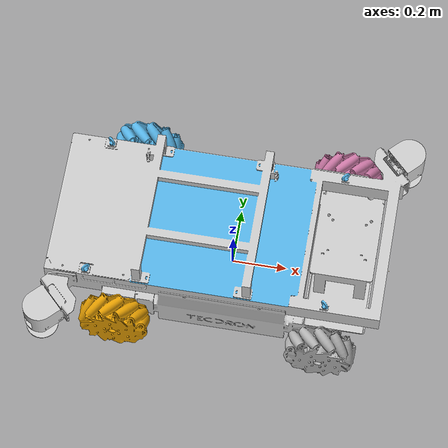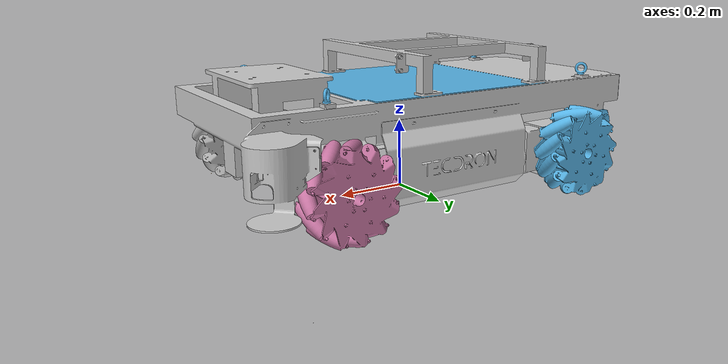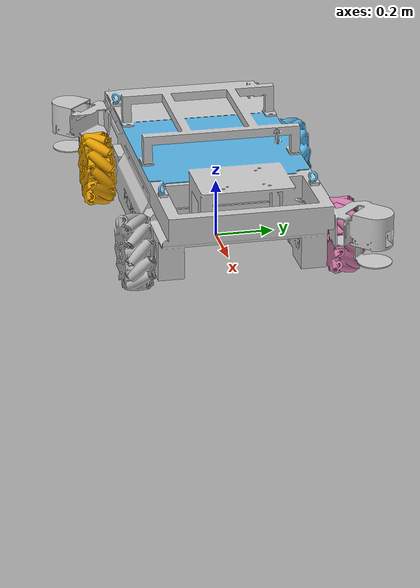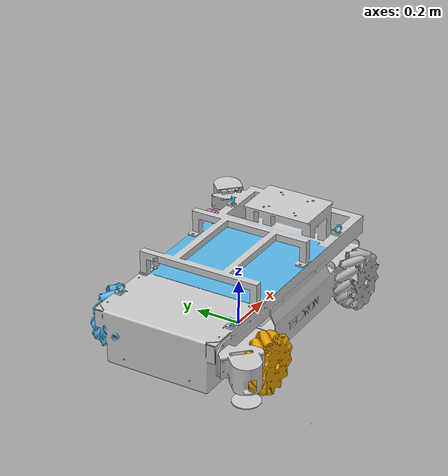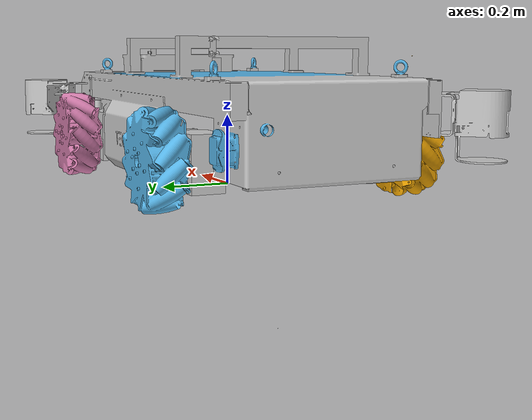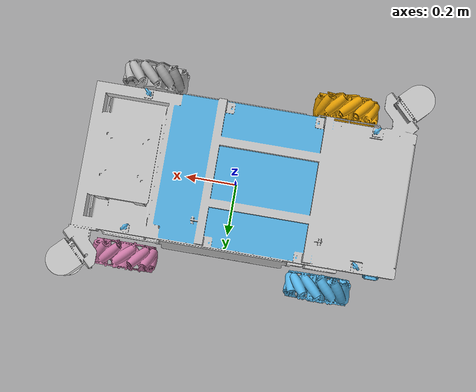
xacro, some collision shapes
<?xml version="1.0"?>

<robot name="tecdron"
	xmlns:xacro="http://www.ros.org/wiki/xacro">

	<xacro:include filename="$(find robot_description)/urdf/wheels/omni_wheel.xacro" />
	<xacro:include filename="$(find robot_description)/urdf/wheels/omni_wheel_visual.xacro" />
	<xacro:include filename="$(find robot_description)/urdf/base/tecdron_base.xacro" />
	<xacro:include filename="$(find robot_description)/urdf/sick/sick_s300.xacro" />
	<xacro:include filename="$(find robot_description)/urdf/sick/cameras.xacro" />
	<xacro:include filename="$(find robot_description)/urdf/sick/depth_camera.xacro" />
	<xacro:include filename="$(find robot_description)/urdf/sick/sick_s300_gazebo.xacro" />
	<xacro:include filename="$(find robot_description)/urdf/base/tecdron_base_gazebo.xacro" />

	<xacro:property name="wheel_offset_x" value="0.375" />
	<xacro:property name="wheel_offset_y" value="0.35" />
	<xacro:property name="wheel_offset_z" value="0.0" />
	<xacro:property name="PI" value="3.1415926535897931" />

	<xacro:tecdron_base/>

	<xacro:omni_wheel prefix="tecdron_front_left" parent="base_link">
		<origin xyz="${wheel_offset_x} ${wheel_offset_y} ${wheel_offset_z}" rpy="0 0 ${PI/4}"/>
	</xacro:omni_wheel>

	<xacro:omni_wheel prefix="tecdron_front_right" parent="base_link">
		<origin xyz="${wheel_offset_x} -${wheel_offset_y} ${wheel_offset_z}" rpy="0 0 ${-PI/4}"/>
	</xacro:omni_wheel>

	<xacro:omni_wheel prefix="tecdron_back_right" parent="base_link">
		<origin xyz="-${wheel_offset_x} -${wheel_offset_y} ${wheel_offset_z}" rpy="0 0 ${PI/4}"/>
	</xacro:omni_wheel>

	<xacro:omni_wheel prefix="tecdron_back_left" parent="base_link">
		<origin xyz="-${wheel_offset_x} ${wheel_offset_y} ${wheel_offset_z}" rpy="0 0 ${-PI/4}"/>
	</xacro:omni_wheel>

	<!--Visual-->

	<xacro:omni_wheel_visual prefix="tecdron_front_left" parent="base_link">
		<origin xyz="${wheel_offset_x} ${wheel_offset_y} ${wheel_offset_z}" rpy="0 0 0"/>
	</xacro:omni_wheel_visual>

	<xacro:omni_wheel_visual prefix="tecdron_front_right" parent="base_link">
		<origin xyz="${wheel_offset_x} -${wheel_offset_y} ${wheel_offset_z}" rpy="0 0 0"/>
	</xacro:omni_wheel_visual>

	<xacro:omni_wheel_visual prefix="tecdron_back_right" parent="base_link">
		<origin xyz="-${wheel_offset_x} -${wheel_offset_y} ${wheel_offset_z}" rpy="0 0 0"/>
	</xacro:omni_wheel_visual>

	<xacro:omni_wheel_visual prefix="tecdron_back_left" parent="base_link">
		<origin xyz="-${wheel_offset_x} ${wheel_offset_y} ${wheel_offset_z}" rpy="0 0 0"/>
	</xacro:omni_wheel_visual>

	<xacro:omni_steering/>

	<xacro:sensor_sick_s300_gazebo/>

	<xacro:sensor_sick_s300 name="front_sick" parent="base_link" color="white">
		<origin xyz="0.576 0.406 0.145" rpy="${PI} 0 ${PI/4}"/>
	</xacro:sensor_sick_s300>

	<xacro:sensor_sick_s300 name="rear_sick" parent="base_link" color="white">
		<origin xyz="-0.576 -0.406 0.145" rpy="${PI} 0 -${(3*PI)/4}"/>
	</xacro:sensor_sick_s300>

	<xacro:cameras name="front_camera" parent="base_link">
		<origin xyz="0.576 0.0 0.0" rpy="0 0 0"/>
	</xacro:cameras>

	<xacro:depth_camera name="depth_front_camera" parent="base_link">
		<origin xyz="0.576 0.0 0.0" rpy="0 0 0"/>
	</xacro:depth_camera>
</robot>

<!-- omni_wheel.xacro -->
<robot name="wheel"
  xmlns:xacro="http://www.ros.org/wiki/xacro">

  <!-- Constants -->
  <xacro:property name="PI" value="3.1415926535897931" />
  <xacro:property name="wheel_radius" value="0.127" />
  <xacro:property name="wheel_height" value="0.036" />
  <xacro:property name="wheel_mass" value="10.0" />
  <!-- in kg-->

  <!-- Simple Macro to calculate inertia -->
  <xacro:macro name="cylinder_inertia" params="m r h">
    <inertia ixx="${m*(3*r*r+h*h)/12}" ixy = "0" ixz = "0" iyy="${m*r*r/2}" iyz = "0" izz="${m*(3*r*r+h*h)/12}" />
  </xacro:macro>

  <!-- Set up of the Wheel -->
  <xacro:macro name="omni_wheel" params="prefix parent *origin ">

    <xacro:if value="${prefix == 'tecdron_front_left'}">
      <xacro:property name="fdir" value="1 -1 0" />
    </xacro:if>
    <xacro:if value="${prefix == 'tecdron_front_right'}">
      <xacro:property name="fdir" value="1 1 0" />
    </xacro:if>
    <xacro:if value="${prefix == 'tecdron_back_right'}">
      <xacro:property name="fdir" value="1 -1 0" />
    </xacro:if>
    <xacro:if value="${prefix == 'tecdron_back_left'}">
      <xacro:property name="fdir" value="1 1 0" />
    </xacro:if>

    <link name="${prefix}_wheel_link">
      <collision>
        <origin xyz="0 0 0" rpy="${PI/2} 0 0" />
        <geometry>
          <cylinder radius="${wheel_radius}" length="0.05"/>
        </geometry>
      </collision>
      <inertial>
        <mass value="${wheel_mass}" />
        <origin xyz="0 0 0" />
        <xacro:cylinder_inertia m="${wheel_mass}" r="${wheel_radius}" h="${wheel_height}" />
      </inertial>
      <visual>
        <origin xyz="0 0 0" rpy="${PI/2} 0 0" />
        <geometry>
         <sphere radius="0.001"/>
        </geometry>
      </visual>
    </link>

    <joint name="${prefix}_wheel_joint" type="continuous">
      <parent link="${parent}"/>
      <!--parent link="base_link"/-->
      <child link="${prefix}_wheel_link"/>
      <xacro:insert_block name="origin" />
      <axis xyz="0 1 0"/>
      <limit effort="1000" velocity="21.0" />
      <dynamics damping="0.001" friction="0.001" />
    </joint>

    <transmission name="${prefix}_wheel_joint_trans">
      <type>transmission_interface/SimpleTransmission</type>
      <joint name="${prefix}_wheel_joint">
        <hardwareInterface>hardware_interface/VelocityJointInterface</hardwareInterface>
      </joint>
    </transmission>

  <gazebo reference="${prefix}_wheel_link" xmlns:ignition="http://ignitionrobotics.org/schema">
    <collision>
      <surface>
        <friction>
          <ode>
            <mu>1.0</mu>
            <mu2>0.0</mu2>
            <fdir1 ignition:expressed_in="base_link">${fdir}</fdir1>
          </ode>
        </friction>
      </surface>
    </collision>
  </gazebo>

  </xacro:macro>

</robot>

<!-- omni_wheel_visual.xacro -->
<robot name="wheel"
  xmlns:xacro="http://www.ros.org/wiki/xacro">

  <!-- Constants -->
  <xacro:property name="PI" value="3.1415926535897931" />
  <xacro:property name="wheel_radius" value="0.127" />
  <xacro:property name="wheel_height" value="0.087" />
  <xacro:property name="wheel_mass" value="10" />
  <!-- in kg-->

  <!-- Simple Macro to calculate inertia -->
  <xacro:macro name="cylinder_inertia" params="m r h">
    <inertia ixx="${m*(3*r*r+h*h)/12}" ixy = "0" ixz = "0" iyy="${m*r*r/2}" iyz = "0" izz="${m*(3*r*r+h*h)/12}" />
  </xacro:macro>

  <!-- Set up of the Wheel -->
  <xacro:macro name="omni_wheel_visual" params="prefix parent *origin">

    <link name="${prefix}_wheel_visual_link">
      <collision>
        <origin xyz="0 0 0" rpy="${PI/2} 0 0" />
        <geometry>
          <sphere radius="${0.0005}" />
        </geometry>
      </collision>
      <visual>
        <origin xyz="0 0 0" rpy="0 0 0" />
        <geometry>
          <mesh filename="package://robot_description/meshes/wheels/wheel_${prefix}.dae" />
        </geometry>
      </visual>
       <inertial>
        <mass value="${wheel_mass}" />
        <origin xyz="0 0 0" />
        <xacro:cylinder_inertia m="${wheel_mass}" r="${wheel_radius}" h="${wheel_height}" />
      </inertial>
    </link>

    <joint name="${prefix}_wheel_visual_joint" type="continuous">
      <parent link="${parent}"/>
      <child link="${prefix}_wheel_visual_link"/>
      <xacro:insert_block name="origin" />
      <axis xyz="0 1 0"/>
    </joint>

    <transmission name="${prefix}_wheel_visual_joint_trans">
      <type>transmission_interface/SimpleTransmission</type>
      <joint name="${prefix}_wheel_visual_joint">
        <hardwareInterface>hardware_interface/VelocityJointInterface</hardwareInterface>
      </joint>
    </transmission>

  </xacro:macro>

</robot>

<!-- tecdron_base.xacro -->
<robot name="tecdron"
  xmlns:xacro="http://www.ros.org/wiki/xacro">

  <xacro:macro name="tecdron_base">
    <!--xacro:include filename="$(find robot_description)/urdf/base/tecdron_base.gazebo.xacro" /-->
    <!-- Robot mechanical and motor parameters -->
    <xacro:property name="PI" value="3.1415926535897931"/>
    <xacro:property name="wheel_width" value="0.175" />
    <xacro:property name="wheel_radius" value="0.127" />

    <!-- BASE FOOTPRINT-->
    <link name="base_footprint">
      <inertial>
        <mass value="1.0" />
        <origin xyz="0 0 0" />
      </inertial>
      <visual>
        <origin xyz="0 0 0" rpy="0 0 0" />
        <geometry>
          <box size="0.001 0.001 0.001" />
        </geometry>
      </visual>

    </link>
    <joint name="base_footprint_joint" type="fixed">
      <origin xyz="0 0 ${wheel_radius}" rpy="0 0 0" />
      <parent link="base_footprint"/>
      <child link="base_link" />
    </joint>

  <!-- BASE_LINK -->
  <link name="base_link">
    <collision>
      <origin xyz="0 0 0" rpy="0 0 0 " />
      <geometry>
        <mesh filename="package://robot_description/meshes/base/tecdron_base.dae"/>
      </geometry>
    </collision>
    <inertial>
      <mass value="10" />
      <origin xyz="0 0 0" rpy="0 0 0" />
      <inertia ixx="1.5417" ixy="0" ixz="0" iyy="3.467" iyz="0" izz="4.742" />
    </inertial>
    <visual>
      <origin xyz="0 0 0" rpy="0 0 0" />
      <geometry>
        <mesh filename="package://robot_description/meshes/base/tecdron_base.dae"/>
      </geometry>
    </visual>
  </link>

  </xacro:macro>
</robot>

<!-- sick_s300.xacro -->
<robot name="sensor_sick_s300"
     xmlns:xacro="http://ros.org/wiki/xacro">

     <xacro:include filename="$(find robot_description)/urdf/sick/materials.urdf.xacro"/>

     <xacro:macro name="sensor_sick_s300" params="name parent *origin color">

          <joint name="${name}_fix_joint" type="fixed">
               <xacro:insert_block name="origin" />
               <parent link="${parent}"/>
               <child link="${name}_fix_link"/>
          </joint>

          <link name="${name}_fix_link">
               <collision>
                    <origin xyz="0 0 0" rpy="0 0 0"/>
                    <geometry>
                         <box size="0.001 0.001 0.001" />
                    </geometry>
               </collision>

               <visual>
                    <origin xyz="0 0 0" rpy="0 0 0"/>
                    <geometry>
                         <mesh filename="package://robot_description/meshes/sick/sick_s300.dae"/>
                    </geometry>
                    <xacro:color_material color="${color}"/>
               </visual>

               <inertial>
                    <mass value="1e-5" />
                    <origin xyz="0 0 0" rpy="0 0 0"/>
                    <inertia ixx="1e-6" ixy="0" ixz="0" iyy="1e-6" iyz="0" izz="1e-6" />
               </inertial>
          </link>

          <joint name="${name}_joint" type="fixed">
               <parent link="${name}_fix_link"/>
               <child link="${name}_link"/>
               <origin xyz="0 0 0.115" rpy="0 0 0"/>
          </joint>

          <link name="${name}_link" />

          <joint name="dummy_${name}_joint" type="fixed">
               <parent link="${name}_link"/>
               <child link="tecdron/base_footprint/${name}_sensor"/>
               <origin xyz="0 0 0.115" rpy="0 0 0"/>
          </joint>

          <link name="tecdron/base_footprint/${name}_sensor" />

    <gazebo reference="${name}_link">
          <sensor type="gpu_lidar" name="${name}_sensor">
              <pose relative_to='${name}_link'>0 0 0 0 0 0</pose>
              <always_on>1</always_on>
              <visualize>true</visualize>
              <update_rate>20</update_rate>
              <topic>/${name}/laser/scan</topic>
              <ray>
                  <scan>
                      <horizontal>
                          <samples>720</samples>
                          <resolution>1</resolution>
                          <min_angle>${-3.1415 * (3 / 4.5)}</min_angle>
                          <max_angle>${3.1415 * (3 / 4.5)}</max_angle>
                      </horizontal>
                  </scan>
                  <range>
                      <min>0.20</min>
                      <max>10.0</max>
                      <resolution>0.01</resolution>
                  </range>
                  <noise>
                      <type>gaussian</type>
                      <mean>0.0</mean>
                      <stddev>0.01</stddev>
                  </noise>
              </ray>
          </sensor>
     </gazebo>

</xacro:macro>

</robot>

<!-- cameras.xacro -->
<robot name="camera"
     xmlns:xacro="http://ros.org/wiki/xacro">

     <xacro:macro name="cameras" params="name parent *origin">

          <joint name="${name}_fix_joint" type="fixed">
               <xacro:insert_block name="origin" />
               <parent link="${parent}"/>
               <child link="${name}_fix_link"/>
          </joint>

          <link name="${name}_fix_link">
               <collision>
                    <origin xyz="0 0 0" rpy="0 0 0"/>
                    <geometry>
                         <box size="0.001 0.001 0.001" />
                    </geometry>
               </collision>

               <visual>
                    <origin xyz="0 0 0" rpy="0 0 0"/>
                    <geometry>
                         <box size="0.001 0.001 0.001" />
                    </geometry>
               </visual>

               <inertial>
                    <mass value="1e-5" />
                    <origin xyz="0 0 0" rpy="0 0 0"/>
                    <inertia ixx="1e-6" ixy="0" ixz="0" iyy="1e-6" iyz="0" izz="1e-6" />
               </inertial>
          </link>

          <joint name="${name}_joint" type="fixed">
               <parent link="${name}_fix_link"/>
               <child link="${name}_link"/>
               <origin xyz="0 0 0" rpy="0 0 0"/>
          </joint>

          <link name="${name}_link" />

          <joint name="dummy_${name}_joint" type="fixed">
               <parent link="${name}_link"/>
               <child link="tecdron/base_footprint/${name}_sensor"/>
               <origin xyz="0 0 0" rpy="0 0 0"/>
          </joint>

          <link name="tecdron/base_footprint/${name}_sensor" />

    <gazebo reference="${name}_link">
          <sensor type="camera" name="${name}_camera">
          <topic>${name}_topic</topic>
            <camera>
               <horizontal_fov>1.047</horizontal_fov>
               <image>
                 <width>320</width>
                 <height>240</height>
               </image>
            </camera>
          <update_rate>30</update_rate>
          </sensor>
     </gazebo>

</xacro:macro>

</robot>

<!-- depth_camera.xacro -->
<robot name="camera"
     xmlns:xacro="http://ros.org/wiki/xacro">

     <xacro:macro name="depth_camera" params="name parent *origin">

          <joint name="${name}_fix_joint" type="fixed">
               <xacro:insert_block name="origin" />
               <parent link="${parent}"/>
               <child link="${name}_fix_link"/>
          </joint>

          <link name="${name}_fix_link">
               <collision>
                    <origin xyz="0 0 0" rpy="0 0 0"/>
                    <geometry>
                         <box size="0.001 0.001 0.001" />
                    </geometry>
               </collision>

               <visual>
                    <origin xyz="0 0 0" rpy="0 0 0"/>
                    <geometry>
                         <box size="0.001 0.001 0.001" />
                    </geometry>
               </visual>

               <inertial>
                    <mass value="1e-5" />
                    <origin xyz="0 0 0" rpy="0 0 0"/>
                    <inertia ixx="1e-6" ixy="0" ixz="0" iyy="1e-6" iyz="0" izz="1e-6" />
               </inertial>
          </link>

          <joint name="${name}_joint" type="fixed">
               <parent link="${name}_fix_link"/>
               <child link="${name}_link"/>
               <origin xyz="0 0 0" rpy="0 0 0"/>
          </joint>

          <link name="${name}_link" />

          <joint name="dummy_${name}_joint" type="fixed">
               <parent link="${name}_link"/>
               <child link="tecdron/base_footprint/${name}"/>
               <origin xyz="0 0 0" rpy="0 0 0"/>
          </joint>

          <link name="tecdron/base_footprint/${name}" />

    <gazebo reference="${name}_link">
          <sensor type="depth_camera" name="${name}">
               <update_rate>10</update_rate>
               <topic>${name}_topic</topic>
               <camera>
                 <horizontal_fov>1.05</horizontal_fov>
                 <image>
                   <width>256</width>
                   <height>256</height>
                   <format>R_FLOAT32</format>
                 </image>
                 <clip>
                   <near>0.1</near>
                   <far>10.0</far>
                 </clip>
               </camera>
          </sensor>
     </gazebo>

</xacro:macro>

</robot>
